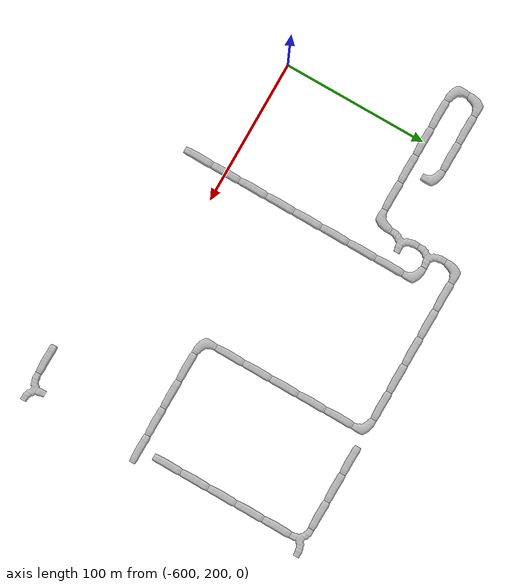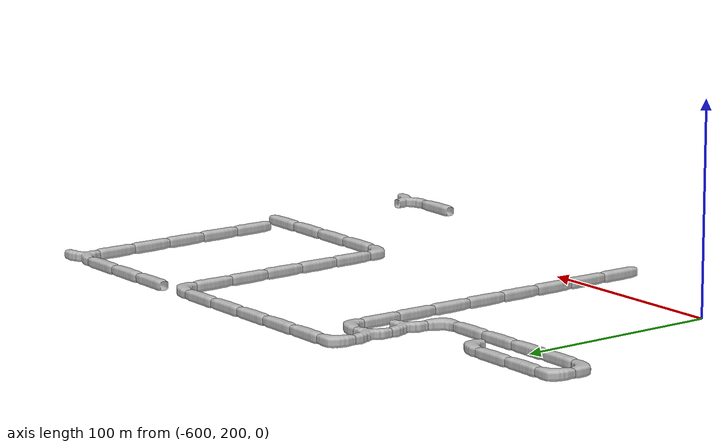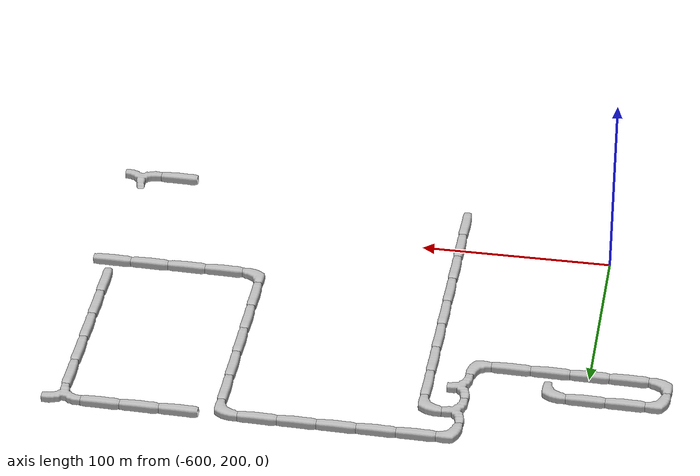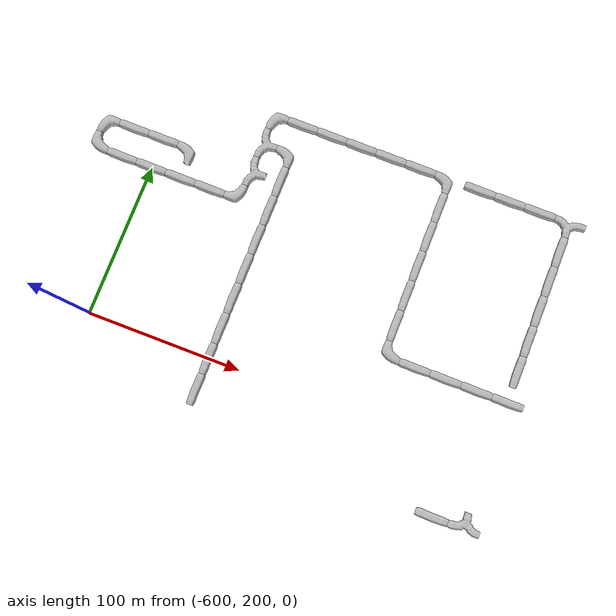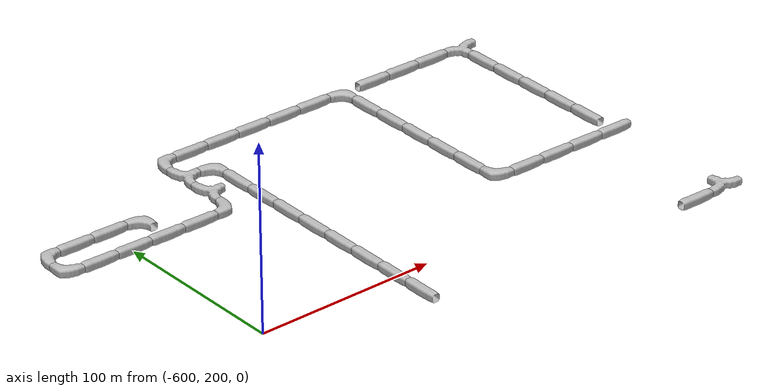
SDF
<sdf version="1.6">
 <world name="cave_8000">
  <include>
   <static>true</static>
   <name>cave_-17_18</name>
   <pose>-340 360 0 0 0 3.141592653589793</pose>
   <uri>model://cave_3way_20m</uri>
  </include>
  <include>
   <static>true</static>
   <name>cave_-17_17</name>
   <pose>-340 340 0 0 0 0.0</pose>
   <uri>model://cave_straight_20m</uri>
  </include>
  <include>
   <static>true</static>
   <name>cave_-17_16</name>
   <pose>-340 320 0 0 0 0.0</pose>
   <uri>model://cave_straight_20m</uri>
  </include>
  <include>
   <static>true</static>
   <name>cave_-17_15</name>
   <pose>-340 300 0 0 0 0.0</pose>
   <uri>model://cave_straight_20m</uri>
  </include>
  <include>
   <static>true</static>
   <name>cave_-17_14</name>
   <pose>-340 280 0 0 0 0.0</pose>
   <uri>model://cave_straight_20m</uri>
  </include>
  <include>
   <static>true</static>
   <name>cave_-17_13</name>
   <pose>-340 260 0 0 0 0.0</pose>
   <uri>model://cave_straight_20m</uri>
  </include>
  <include>
   <static>true</static>
   <name>cave_-18_18</name>
   <pose>-360 360 0 0 0 1.5707963267948966</pose>
   <uri>model://cave_straight_20m</uri>
  </include>
  <include>
   <static>true</static>
   <name>cave_-19_18</name>
   <pose>-380 360 0 0 0 1.5707963267948966</pose>
   <uri>model://cave_straight_20m</uri>
  </include>
  <include>
   <static>true</static>
   <name>cave_-20_18</name>
   <pose>-400 360 0 0 0 1.5707963267948966</pose>
   <uri>model://cave_straight_20m</uri>
  </include>
  <include>
   <static>true</static>
   <name>cave_-17_12</name>
   <pose>-340 240 0 0 0 1.5707963267948966</pose>
   <uri>model://cave_straight_20m</uri>
  </include>
  <include>
   <static>true</static>
   <name>cave_-18_12</name>
   <pose>-360 240 0 0 0 1.5707963267948966</pose>
   <uri>model://cave_straight_20m</uri>
  </include>
  <include>
   <static>true</static>
   <name>cave_-19_12</name>
   <pose>-380 240 0 0 0 1.5707963267948966</pose>
   <uri>model://cave_straight_20m</uri>
  </include>
  <include>
   <static>true</static>
   <name>cave_-20_12</name>
   <pose>-400 240 0 0 0 1.5707963267948966</pose>
   <uri>model://cave_straight_20m</uri>
  </include>
  <include>
   <static>true</static>
   <name>cave_-21_12</name>
   <pose>-420 240 0 0 0 0.0</pose>
   <uri>model://cave_L_20m</uri>
  </include>
  <include>
   <static>true</static>
   <name>cave_-21_13</name>
   <pose>-420 260 0 0 0 0.0</pose>
   <uri>model://cave_straight_20m</uri>
  </include>
  <include>
   <static>true</static>
   <name>cave_-21_14</name>
   <pose>-420 280 0 0 0 0.0</pose>
   <uri>model://cave_straight_20m</uri>
  </include>
  <include>
   <static>true</static>
   <name>cave_-21_15</name>
   <pose>-420 300 0 0 0 0.0</pose>
   <uri>model://cave_straight_20m</uri>
  </include>
  <include>
   <static>true</static>
   <name>cave_-21_16</name>
   <pose>-420 320 0 0 0 0.0</pose>
   <uri>model://cave_straight_20m</uri>
  </include>
  <include>
   <static>true</static>
   <name>cave_-21_17</name>
   <pose>-420 340 0 0 0 0.0</pose>
   <uri>model://cave_straight_20m</uri>
  </include>
  <include>
   <static>true</static>
   <name>cave_-21_18</name>
   <pose>-420 360 0 0 0 3.141592653589793</pose>
   <uri>model://cave_L_20m</uri>
  </include>
  <include>
   <static>true</static>
   <name>cave_-22_18</name>
   <pose>-440 360 0 0 0 1.5707963267948966</pose>
   <uri>model://cave_straight_20m</uri>
  </include>
  <include>
   <static>true</static>
   <name>cave_-23_18</name>
   <pose>-460 360 0 0 0 1.5707963267948966</pose>
   <uri>model://cave_straight_20m</uri>
  </include>
  <include>
   <static>true</static>
   <name>cave_-24_18</name>
   <pose>-480 360 0 0 0 1.5707963267948966</pose>
   <uri>model://cave_straight_20m</uri>
  </include>
  <include>
   <static>true</static>
   <name>cave_-25_18</name>
   <pose>-500 360 0 0 0 1.5707963267948966</pose>
   <uri>model://cave_straight_20m</uri>
  </include>
  <include>
   <static>true</static>
   <name>cave_-26_18</name>
   <pose>-520 360 0 0 0 1.5707963267948966</pose>
   <uri>model://cave_straight_20m</uri>
  </include>
  <include>
   <static>true</static>
   <name>cave_-27_18</name>
   <pose>-540 360 0 0 0 -1.5707963267948966</pose>
   <uri>model://cave_L_20m</uri>
  </include>
  <include>
   <static>true</static>
   <name>cave_-27_17</name>
   <pose>-540 340 0 0 0 -1.5707963267948966</pose>
   <uri>model://cave_3way_20m</uri>
  </include>
  <include>
   <static>true</static>
   <name>cave_-26_17</name>
   <pose>-520 340 0 0 0 3.141592653589793</pose>
   <uri>model://cave_L_20m</uri>
  </include>
  <include>
   <static>true</static>
   <name>cave_-26_16</name>
   <pose>-520 320 0 0 0 0.0</pose>
   <uri>model://cave_straight_20m</uri>
  </include>
  <include>
   <static>true</static>
   <name>cave_-26_15</name>
   <pose>-520 300 0 0 0 0.0</pose>
   <uri>model://cave_straight_20m</uri>
  </include>
  <include>
   <static>true</static>
   <name>cave_-26_14</name>
   <pose>-520 280 0 0 0 0.0</pose>
   <uri>model://cave_straight_20m</uri>
  </include>
  <include>
   <static>true</static>
   <name>cave_-26_13</name>
   <pose>-520 260 0 0 0 0.0</pose>
   <uri>model://cave_straight_20m</uri>
  </include>
  <include>
   <static>true</static>
   <name>cave_-26_12</name>
   <pose>-520 240 0 0 0 0.0</pose>
   <uri>model://cave_straight_20m</uri>
  </include>
  <include>
   <static>true</static>
   <name>cave_-26_11</name>
   <pose>-520 220 0 0 0 0.0</pose>
   <uri>model://cave_straight_20m</uri>
  </include>
  <include>
   <static>true</static>
   <name>cave_-26_10</name>
   <pose>-520 200 0 0 0 0.0</pose>
   <uri>model://cave_straight_20m</uri>
  </include>
  <include>
   <static>true</static>
   <name>cave_-26_9</name>
   <pose>-520 180 0 0 0 0.0</pose>
   <uri>model://cave_straight_20m</uri>
  </include>
  <include>
   <static>true</static>
   <name>cave_-18_8</name>
   <pose>-360 160 0 0 0 1.5707963267948966</pose>
   <uri>model://cave_straight_20m</uri>
  </include>
  <include>
   <static>true</static>
   <name>cave_-17_8</name>
   <pose>-340 160 0 0 0 0.0</pose>
   <uri>model://cave_3way_20m</uri>
  </include>
  <include>
   <static>true</static>
   <name>cave_-27_16</name>
   <pose>-540 320 0 0 0 -1.5707963267948966</pose>
   <uri>model://cave_3way_20m</uri>
  </include>
  <include>
   <static>true</static>
   <name>cave_-27_15</name>
   <pose>-540 300 0 0 0 1.5707963267948966</pose>
   <uri>model://cave_L_20m</uri>
  </include>
  <include>
   <static>true</static>
   <name>cave_-28_15</name>
   <pose>-560 300 0 0 0 1.5707963267948966</pose>
   <uri>model://cave_straight_20m</uri>
  </include>
  <include>
   <static>true</static>
   <name>cave_-29_15</name>
   <pose>-580 300 0 0 0 1.5707963267948966</pose>
   <uri>model://cave_straight_20m</uri>
  </include>
  <include>
   <static>true</static>
   <name>cave_-30_15</name>
   <pose>-600 300 0 0 0 1.5707963267948966</pose>
   <uri>model://cave_straight_20m</uri>
  </include>
  <include>
   <static>true</static>
   <name>cave_-31_15</name>
   <pose>-620 300 0 0 0 1.5707963267948966</pose>
   <uri>model://cave_straight_20m</uri>
  </include>
  <include>
   <static>true</static>
   <name>cave_-32_15</name>
   <pose>-640 300 0 0 0 0.0</pose>
   <uri>model://cave_L_20m</uri>
  </include>
  <include>
   <static>true</static>
   <name>cave_-32_16</name>
   <pose>-640 320 0 0 0 -1.5707963267948966</pose>
   <uri>model://cave_L_20m</uri>
  </include>
  <include>
   <static>true</static>
   <name>cave_-31_16</name>
   <pose>-620 320 0 0 0 1.5707963267948966</pose>
   <uri>model://cave_straight_20m</uri>
  </include>
  <include>
   <static>true</static>
   <name>cave_-30_16</name>
   <pose>-600 320 0 0 0 1.5707963267948966</pose>
   <uri>model://cave_straight_20m</uri>
  </include>
  <include>
   <static>true</static>
   <name>cave_-29_16</name>
   <pose>-580 320 0 0 0 3.141592653589793</pose>
   <uri>model://cave_L_20m</uri>
  </include>
 </world>
</sdf>
